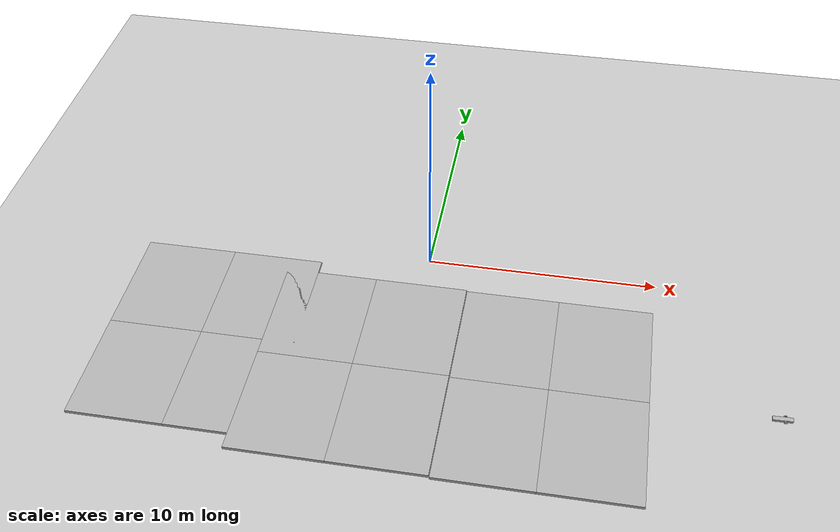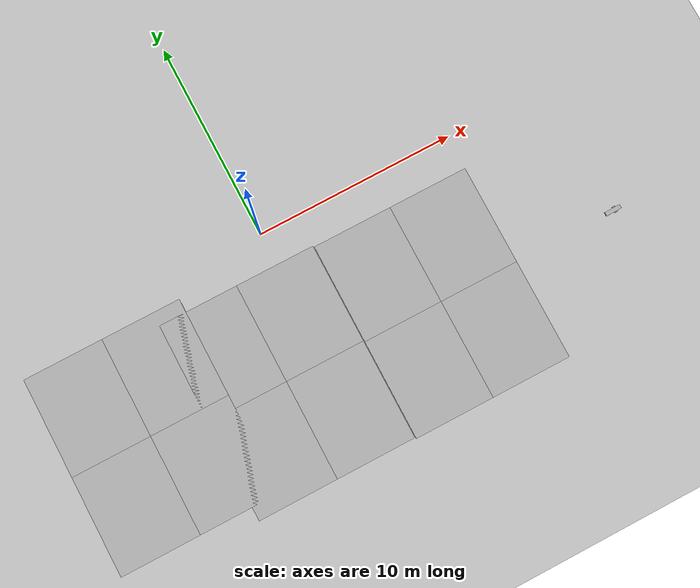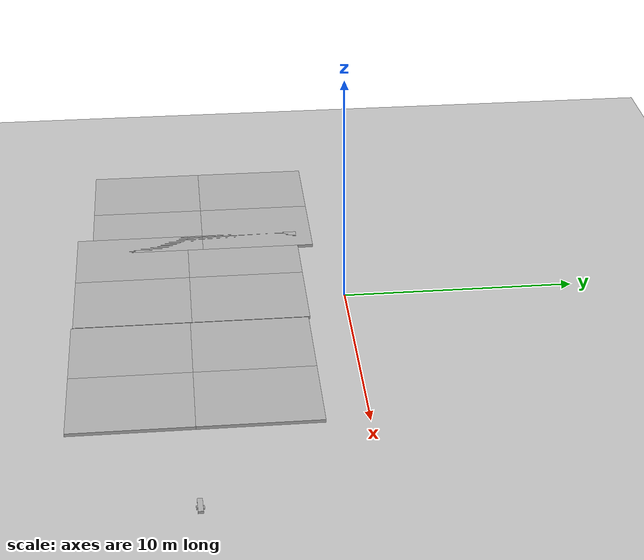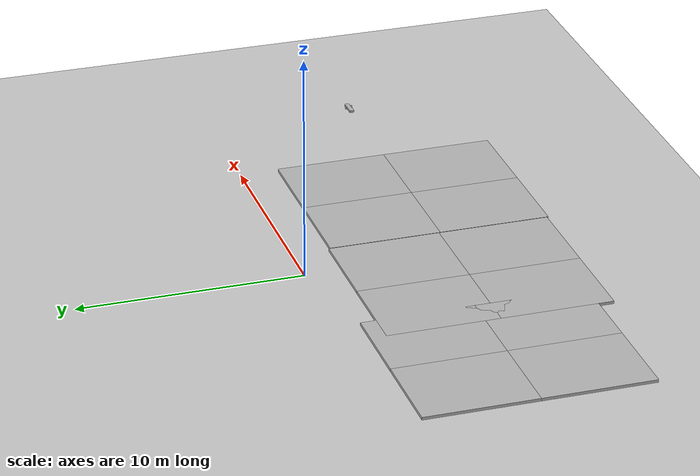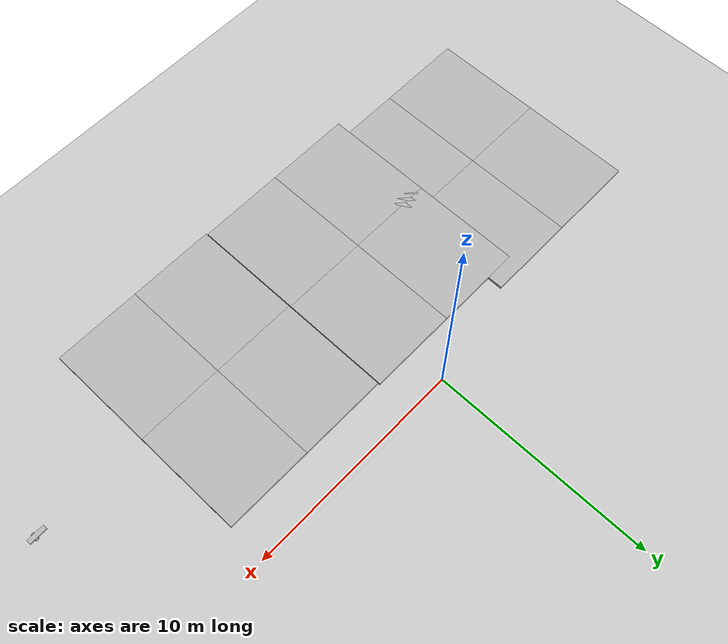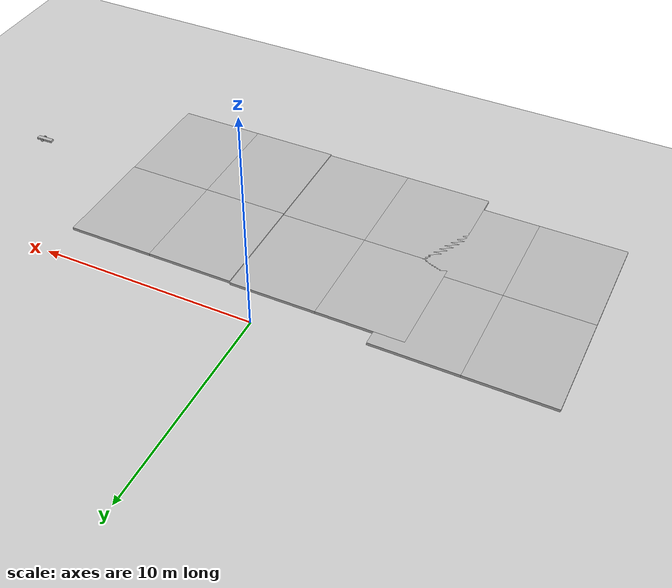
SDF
<sdf version="1.7">
 <world name="default">
  <model name="ground_plane">
   <static>1</static>
   <link name="link">
    <collision name="collision">
     <geometry><plane><normal>0 0 1</normal><size>100 100</size></plane></geometry>
     <surface>
      <contact><collide_bitmask>65535</collide_bitmask></contact>
      <friction><ode><mu>100</mu><mu2>50</mu2></ode></friction>
     </surface>
    </collision>
    <visual name="visual">
     <cast_shadows>0</cast_shadows>
     <geometry><plane><normal>0 0 1</normal><size>100 100</size></plane></geometry>
     <material>
      <script><uri>file://media/materials/scripts/gazebo.material</uri><name>Gazebo/Grey</name></script>
     </material>
    </visual>
   </link>
  </model>
  <model name="mud_box_0">
   <static>1</static>
   <link name="link">
    <collision name="collision"><geometry><box><size>8 10 0.2</size></box></geometry></collision>
    <visual name="visual_1">
     <pose>-2 2.5 0 0 -0 0</pose>
     <cast_shadows>0</cast_shadows>
     <geometry><box><size>4 5 0.2</size></box></geometry>
     <material>
      <script>
       <uri>model://mud_box/materials/scripts</uri>
       <uri>model://mud_box/materials/textures</uri>
       <name>vrc/mud</name>
      </script>
     </material>
    </visual>
    <visual name="visual_2">
     <pose>2 2.5 0 0 -0 0</pose>
     <cast_shadows>0</cast_shadows>
     <geometry><box><size>4 5 0.2</size></box></geometry>
     <material>
      <script>
       <uri>model://mud_box/materials/scripts</uri>
       <uri>model://mud_box/materials/textures</uri>
       <name>vrc/mud</name>
      </script>
     </material>
    </visual>
    <visual name="visual_3">
     <pose>2 -2.5 0 0 -0 0</pose>
     <cast_shadows>0</cast_shadows>
     <geometry><box><size>4 5 0.2</size></box></geometry>
     <material>
      <script>
       <uri>model://mud_box/materials/scripts</uri>
       <uri>model://mud_box/materials/textures</uri>
       <name>vrc/mud</name>
      </script>
     </material>
    </visual>
    <visual name="visual_4">
     <pose>-2 -2.5 0 0 -0 0</pose>
     <cast_shadows>0</cast_shadows>
     <geometry><box><size>4 5 0.2</size></box></geometry>
     <material>
      <script>
       <uri>model://mud_box/materials/scripts</uri>
       <uri>model://mud_box/materials/textures</uri>
       <name>vrc/mud</name>
      </script>
     </material>
    </visual>
   </link>
   <pose>-2.11276 -6.65157 0 0 -0 0</pose>
  </model>
  <model name="mud_box_1">
   <static>1</static>
   <link name="link">
    <collision name="collision"><geometry><box><size>8 10 0.2</size></box></geometry></collision>
    <visual name="visual_1">
     <pose>-2 2.5 0 0 -0 0</pose>
     <cast_shadows>0</cast_shadows>
     <geometry><box><size>4 5 0.2</size></box></geometry>
     <material>
      <script>
       <uri>model://mud_box/materials/scripts</uri>
       <uri>model://mud_box/materials/textures</uri>
       <name>vrc/mud</name>
      </script>
     </material>
    </visual>
    <visual name="visual_2">
     <pose>2 2.5 0 0 -0 0</pose>
     <cast_shadows>0</cast_shadows>
     <geometry><box><size>4 5 0.2</size></box></geometry>
     <material>
      <script>
       <uri>model://mud_box/materials/scripts</uri>
       <uri>model://mud_box/materials/textures</uri>
       <name>vrc/mud</name>
      </script>
     </material>
    </visual>
    <visual name="visual_3">
     <pose>2 -2.5 0 0 -0 0</pose>
     <cast_shadows>0</cast_shadows>
     <geometry><box><size>4 5 0.2</size></box></geometry>
     <material>
      <script>
       <uri>model://mud_box/materials/scripts</uri>
       <uri>model://mud_box/materials/textures</uri>
       <name>vrc/mud</name>
      </script>
     </material>
    </visual>
    <visual name="visual_4">
     <pose>-2 -2.5 0 0 -0 0</pose>
     <cast_shadows>0</cast_shadows>
     <geometry><box><size>4 5 0.2</size></box></geometry>
     <material>
      <script>
       <uri>model://mud_box/materials/scripts</uri>
       <uri>model://mud_box/materials/textures</uri>
       <name>vrc/mud</name>
      </script>
     </material>
    </visual>
   </link>
   <pose>-8.74488 -5.9658 0 0 -0 0</pose>
  </model>
  <model name="mud_box">
   <static>1</static>
   <link name="link">
    <collision name="collision"><geometry><box><size>8 10 0.2</size></box></geometry></collision>
    <visual name="visual_1">
     <pose>-2 2.5 0 0 -0 0</pose>
     <cast_shadows>0</cast_shadows>
     <geometry><box><size>4 5 0.2</size></box></geometry>
     <material>
      <script>
       <uri>model://mud_box/materials/scripts</uri>
       <uri>model://mud_box/materials/textures</uri>
       <name>vrc/mud</name>
      </script>
     </material>
    </visual>
    <visual name="visual_2">
     <pose>2 2.5 0 0 -0 0</pose>
     <cast_shadows>0</cast_shadows>
     <geometry><box><size>4 5 0.2</size></box></geometry>
     <material>
      <script>
       <uri>model://mud_box/materials/scripts</uri>
       <uri>model://mud_box/materials/textures</uri>
       <name>vrc/mud</name>
      </script>
     </material>
    </visual>
    <visual name="visual_3">
     <pose>2 -2.5 0 0 -0 0</pose>
     <cast_shadows>0</cast_shadows>
     <geometry><box><size>4 5 0.2</size></box></geometry>
     <material>
      <script>
       <uri>model://mud_box/materials/scripts</uri>
       <uri>model://mud_box/materials/textures</uri>
       <name>vrc/mud</name>
      </script>
     </material>
    </visual>
    <visual name="visual_4">
     <pose>-2 -2.5 0 0 -0 0</pose>
     <cast_shadows>0</cast_shadows>
     <geometry><box><size>4 5 0.2</size></box></geometry>
     <material>
      <script>
       <uri>model://mud_box/materials/scripts</uri>
       <uri>model://mud_box/materials/textures</uri>
       <name>vrc/mud</name>
      </script>
     </material>
    </visual>
   </link>
   <pose>5.92118 -6.72157 0 0 -0 0</pose>
  </model>
  <model name="my_simple_robot">
   <static>0</static>
   <link name="chassis">
    <pose>0 0 0.1 0 -0 0</pose>
    <collision name="collision"><geometry><box><size>0.4 0.2 0.1</size></box></geometry></collision>
    <visual name="visual"><geometry><box><size>0.8 0.2 0.1</size></box></geometry></visual>
    <collision name="caster_collision">
     <pose>-0.15 0 -0.05 0 -0 0</pose>
     <geometry><sphere><radius>0.05</radius></sphere></geometry>
     <surface><friction><ode><mu>0</mu><mu2>0</mu2><slip1>1</slip1><slip2>1</slip2></ode></friction></surface>
    </collision>
    <visual name="caster_visual">
     <pose>-0.15 0 -0.05 0 -0 0</pose>
     <geometry><sphere><radius>0.05</radius></sphere></geometry>
    </visual>
    <inertial>
     <inertia><ixx>1</ixx><ixy>0</ixy><ixz>0</ixz><iyy>1</iyy><iyz>0</iyz><izz>1</izz></inertia>
     <mass>1</mass>
    </inertial>
   </link>
   <link name="left_wheel">
    <pose>0.1 0.13 0.1 -0 1.5707 1.5707</pose>
    <collision name="collision">
     <geometry><cylinder><radius>0.1</radius><length>0.05</length></cylinder></geometry>
    </collision>
    <visual name="visual">
     <geometry><cylinder><radius>0.08</radius><length>0.04</length></cylinder></geometry>
    </visual>
    <inertial>
     <inertia><ixx>1</ixx><ixy>0</ixy><ixz>0</ixz><iyy>1</iyy><iyz>0</iyz><izz>1</izz></inertia>
     <mass>1</mass>
    </inertial>
   </link>
   <link name="right_wheel">
    <pose>0.1 -0.13 0.1 -0 1.5707 1.5707</pose>
    <collision name="collision">
     <geometry><cylinder><radius>0.1</radius><length>0.05</length></cylinder></geometry>
    </collision>
    <visual name="visual">
     <geometry><cylinder><radius>0.08</radius><length>0.04</length></cylinder></geometry>
    </visual>
    <inertial>
     <inertia><ixx>1</ixx><ixy>0</ixy><ixz>0</ixz><iyy>1</iyy><iyz>0</iyz><izz>1</izz></inertia>
     <mass>1</mass>
    </inertial>
   </link>
   <joint name="left_wheel_hinge" type="revolute">
    <pose>0 0 -0.03 0 -0 0</pose>
    <child>left_wheel</child>
    <parent>chassis</parent>
    <axis>
     <xyz expressed_in="__model__">0 1 0</xyz>
     <limit><lower>-1e+16</lower><upper>1e+16</upper></limit>
     <dynamics><spring_reference>0</spring_reference><spring_stiffness>0</spring_stiffness></dynamics>
    </axis>
   </joint>
   <joint name="right_wheel_hinge" type="revolute">
    <pose>0 0 0.03 0 -0 0</pose>
    <child>right_wheel</child>
    <parent>chassis</parent>
    <axis>
     <xyz expressed_in="__model__">0 1 0</xyz>
     <limit><lower>-1e+16</lower><upper>1e+16</upper></limit>
     <dynamics><spring_reference>0</spring_reference><spring_stiffness>0</spring_stiffness></dynamics>
    </axis>
   </joint>
   <pose>15.0713 -6.70776 1e-06 2.1e-05 -1.3e-05 0.023189</pose>
  </model>
 </world>
</sdf>
